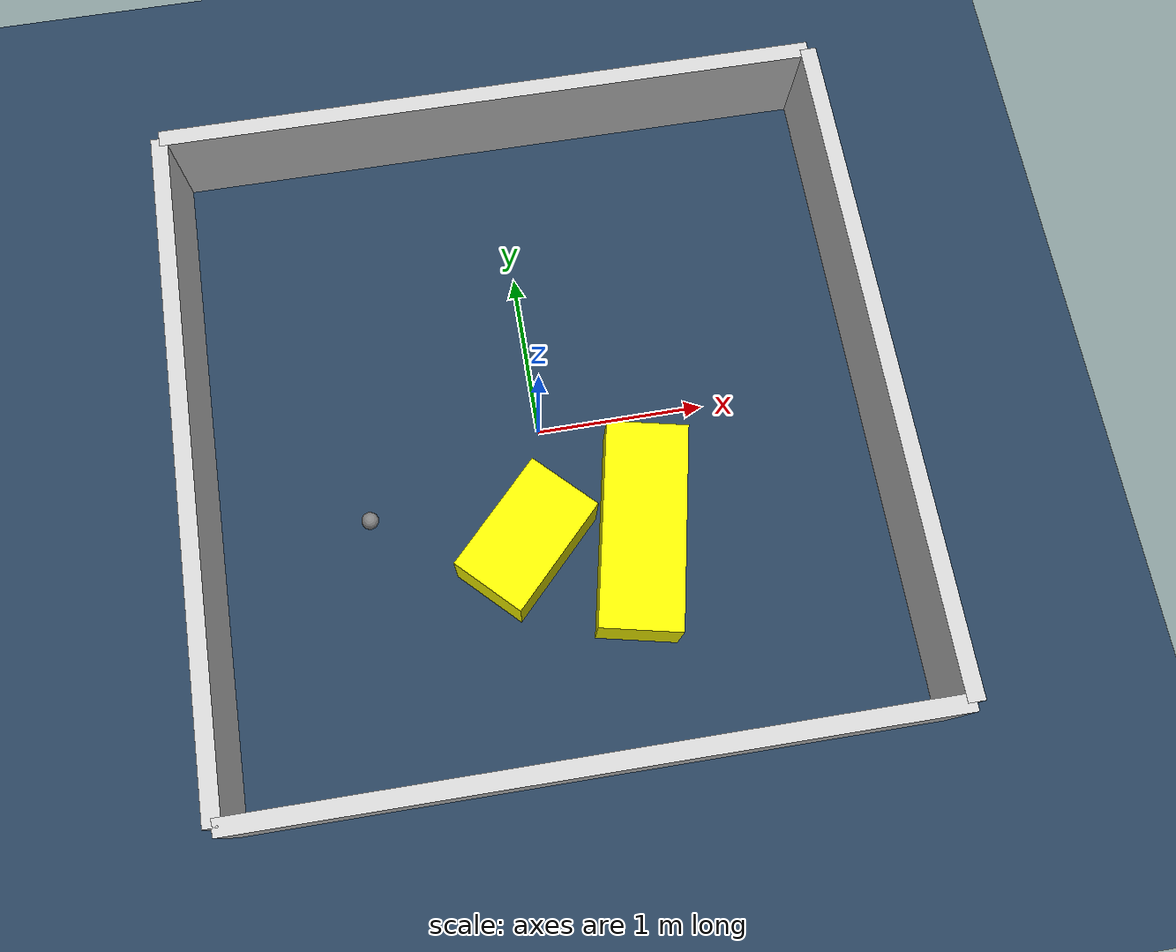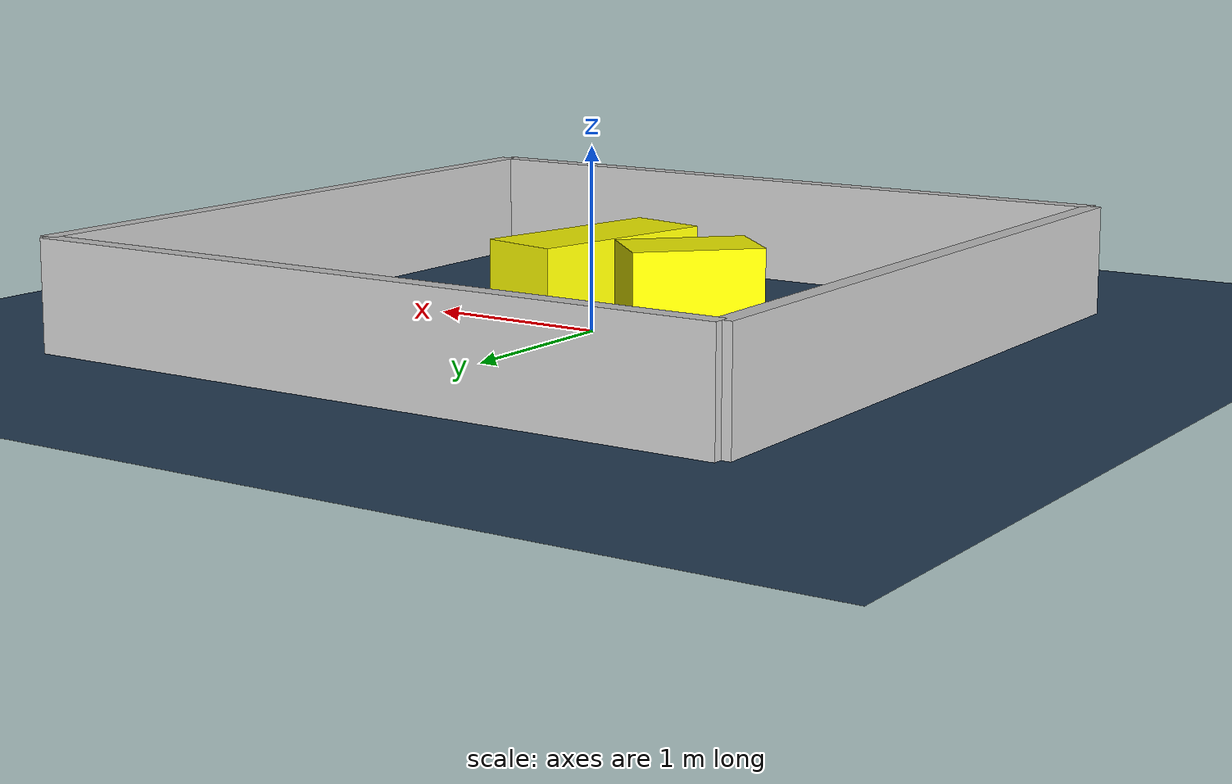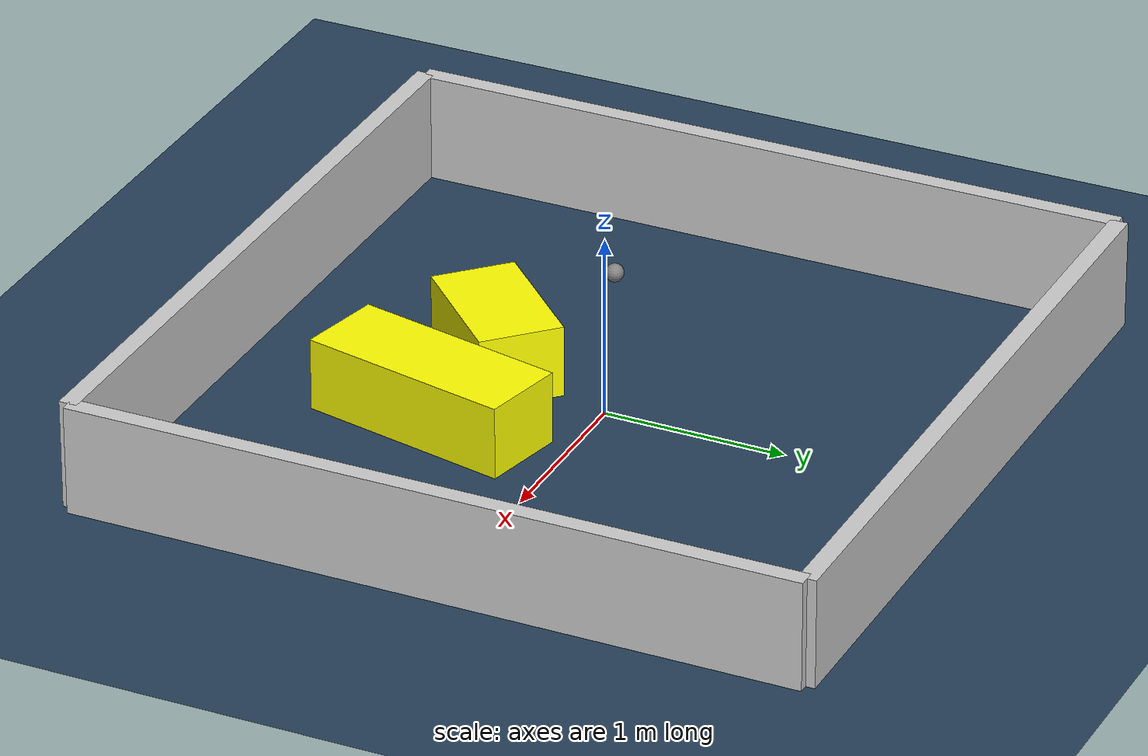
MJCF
<?xml version="1.0" ?>
<mujoco model="generated_environment">
  <option timestep="0.01" integrator="RK4" cone="elliptic"/>
  <default>
    <geom density="1"/>
  </default>
  <asset>
    <texture builtin="gradient" height="3072" rgb1="0.3 0.5 0.7" rgb2="0 0 0" type="skybox" width="512"/>
    <texture builtin="checker" height="300" mark="edge" markrgb="0.8 0.8 0.8" name="groundplane" rgb1="0.2 0.3 0.4" rgb2="0.1 0.2 0.3" type="2d" width="300"/>
    <material name="groundplane" reflectance="0.2" texrepeat="5 5" texture="groundplane" texuniform="true"/>
    <material name="robot" rgba="0.0 1.0 0.0 1"/>
  </asset>
  <worldbody>
    <light dir="0 0 -1" directional="true" pos="0 0 1.5"/>
    <geom condim="4" friction="1.0 0.005 0.001" material="groundplane" name="floor" size="0 0 0.05" type="plane"/>
    <body name="walls">
      <geom name="wall_1" condim="4" pos="-2.0 0.0 0.3" rgba="0.800000011920929 0.800000011920929 0.800000011920929 1.0" size="0.05 2.0 0.3" type="box"/>
      <geom name="wall_2" condim="4" pos="2.0 0.0 0.3" rgba="0.800000011920929 0.800000011920929 0.800000011920929 1.0" size="0.05 2.0 0.3" type="box"/>
      <geom name="wall_3" condim="4" pos="0.0 -2.0 0.3" rgba="0.800000011920929 0.800000011920929 0.800000011920929 1.0" size="2.0 0.05 0.3" type="box"/>
      <geom name="wall_4" condim="4" pos="0.0 2.0 0.3" rgba="0.800000011920929 0.800000011920929 0.800000011920929 1.0" size="2.0 0.05 0.3" type="box"/>
    </body>
    <body name="robot">
      <joint name="joint_x" type="slide" pos="0 0 0" axis="1 0 0"/>
      <joint name="joint_y" type="slide" pos="0 0 0" axis="0 1 0"/>
      <geom name="robot" type="sphere" pos="-1.0561549305997784 -0.4394527630383793 0.2" size="0.05" mass="5." friction="1.0 0.005 0.0001" condim="4"/>
      <site name="sensor_ball"/>
    </body>
    <body name="obstacle_1_movable">
      <geom name="obstacle_1_movable" condim="4" pos="0.48177924498970004 -0.7487761070848371 0.2" euler="0 0 77.83172195786818" friction="1.0 0.005 0.001" rgba="1 1 0 1" size="0.5953982467630585 0.2372230679123415 0.2" type="box" mass="0.1"/>
      <joint type="free"/>
    </body>
    <body name="obstacle_2_movable">
      <geom name="obstacle_2_movable" condim="4" pos="-0.18034803180147052 -0.6973708929096948 0.2" euler="0 0 135.37042403568987" friction="1.0 0.005 0.001" rgba="1 1 0 1" size="0.22973763191183819 0.3743815736375433 0.2" type="box" mass="0.1"/>
      <joint type="free"/>
    </body>
  </worldbody>
  <actuator>
    <motor name="actuator_x" joint="joint_x" gear="1" ctrlrange="-1 1"/>
    <motor name="actuator_y" joint="joint_y" gear="1" ctrlrange="-1 1"/>
  </actuator>
</mujoco>
